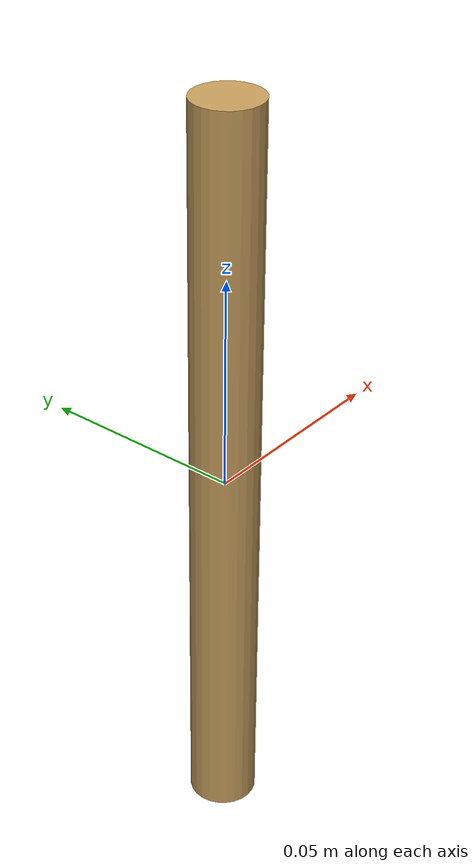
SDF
<?xml version="1.0"?>
<sdf version="1.9">
  <model name="stir_stick">
    <static>false</static>
    <link name="stir_stick_link">
      <inertial>
        <mass>0.018</mass>
        <inertia>
          <ixx>0.00007</ixx>
          <iyy>0.00007</iyy>
          <izz>0.000003</izz>
        </inertia>
      </inertial>
      <collision name="stick_collision">
        <geometry>
          <cylinder>
            <radius>0.008</radius>
            <length>0.18</length>
          </cylinder>
        </geometry>
        <surface>
          <friction>
            <ode>
              <mu>2.0</mu>
              <mu2>2.0</mu2>
            </ode>
          </friction>
          <contact>
            <collide_bitmask>0x02</collide_bitmask>
          </contact>
        </surface>
      </collision>
      <visual name="stick_visual">
        <geometry>
          <cylinder>
            <radius>0.008</radius>
            <length>0.18</length>
          </cylinder>
        </geometry>
        <material>
          <ambient>0.78 0.62 0.36 1.0</ambient>
          <diffuse>0.78 0.62 0.36 1.0</diffuse>
        </material>
      </visual>
    </link>
  </model>
</sdf>
